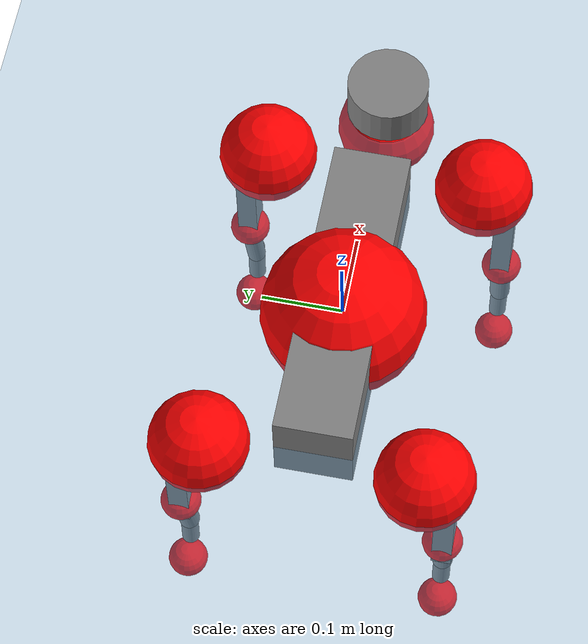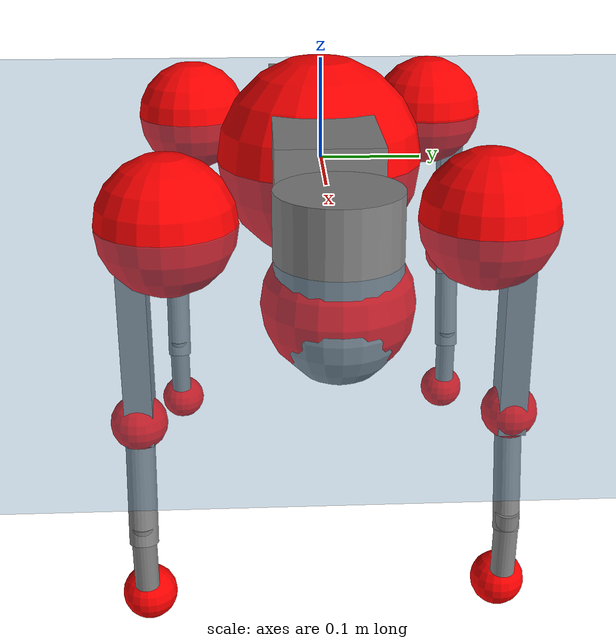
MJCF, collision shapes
<mujoco model="go2">
  <compiler angle="radian" assetdir="assets" balanceinertia="true" inertiafromgeom="false"/>

  <option timestep="0.005" density="1.2" viscosity="2e-05"/>

  <size nkey="1"/>

  <visual>
    <quality shadowsize="8192"/>
    <map shadowclip="0.5"/>
  </visual>

  <default>
    <default class="/">
      <geom contype="0" conaffinity="0" group="1" solref="-1000 -80"/>
      <site size="0.01 0.005 0.005" group="5"/>
      <general forcelimited="true" biastype="affine" gainprm="20" biasprm="0 -20 -0.5"/>
      <default class="go2">
        <joint armature="0.01" damping="0.01" frictionloss="0.2"/>
        <geom condim="1" margin="0.001"/>
        <default class="visual">
          <geom type="mesh" group="2"/>
        </default>
        <default class="collision">
          <geom group="3"/>
          <default class="foot">
            <geom size="0.022 0 0" condim="6" priority="1" friction="0.8 0.02 0.01" solimp="0.015 1 0.022"/>
          </default>
        </default>
        <default class="reward_collision_sphere">
          <geom group="5" rgba="1 0 0 1"/>
        </default>
      </default>
    </default>
  </default>

  <asset>
    <texture type="skybox" colorspace="auto" name="//unnamed_texture_0" builtin="gradient" rgb1="0.95 0.95 0.95" rgb2="0.95 0.95 0.95" width="100" height="600"/>
    <texture type="2d" colorspace="auto" name="texplane" builtin="checker" rgb1="0.345 0.575 0.748" rgb2="0.345 0.575 0.748" markrgb="1 1 1" width="512" height="512"/>
    <material name="MatPlane" class="/" texture="texplane" texuniform="true" texrepeat="2 2" specular="0.9"/>
    <material name="metal" class="/" rgba="0.9 0.95 0.95 1"/>
    <material name="black" class="/" rgba="0 0 0 1"/>
    <material name="white" class="/"/>
    <material name="gray" class="/" rgba="0.671705 0.692426 0.77427 1"/>
    <mesh name="base_0" class="/" file="base_0.obj"/>
    <mesh name="base_1" class="/" file="base_1.obj"/>
    <mesh name="base_2" class="/" file="base_2.obj"/>
    <mesh name="base_3" class="/" file="base_3.obj"/>
    <mesh name="base_4" class="/" file="base_4.obj"/>
    <mesh name="hip_0" class="/" file="hip_0.obj"/>
    <mesh name="hip_1" class="/" file="hip_1.obj"/>
    <mesh name="thigh_0" class="/" file="thigh_0.obj"/>
    <mesh name="thigh_1" class="/" file="thigh_1.obj"/>
    <mesh name="thigh_mirror_0" class="/" file="thigh_mirror_0.obj"/>
    <mesh name="thigh_mirror_1" class="/" file="thigh_mirror_1.obj"/>
    <mesh name="calf_0" class="/" file="calf_0.obj"/>
    <mesh name="calf_1" class="/" file="calf_1.obj"/>
    <mesh name="calf_mirror_0" class="/" file="calf_mirror_0.obj"/>
    <mesh name="calf_mirror_1" class="/" file="calf_mirror_1.obj"/>
    <mesh name="foot" class="/" file="foot.obj"/>
  </asset>

  <worldbody>
    <geom name="floor" class="/" size="100 100 0.125" type="plane" group="0" material="MatPlane"/>
    <light name="toplight_shadow" class="/" pos="0 0 5" dir="0.0990148 0.0990148 -0.990148" type="directional" ambient="0.04 0.04 0.04" diffuse="0.55 0.55 0.55" specular="0.12 0.12 0.12"/>
    <light name="toplight_fill" class="/" pos="0 0 5" dir="0.0990148 0.0990148 -0.990148" type="directional" castshadow="false" ambient="0.04 0.04 0.04" diffuse="0.3 0.3 0.3" specular="0.08 0.08 0.08"/>
    <body name="trunk" childclass="go2" pos="-0.000201874 -0.00142157 -0.000371121" quat="1 7.50875e-05 4.38209e-06 -5.75671e-06">
      <inertial pos="0.02453 -0.00115156 -0.00516611" quat="-0.0083116 0.716948 0.000157097 0.697078" mass="7.63651" diaginertia="0.137327 0.22087 0.0117327"/>
      <joint name="//unnamed_joint_0" type="free" armature="0" damping="0" frictionloss="0"/>
      <geom name="//unnamed_geom_1" class="visual" material="black" mesh="base_0"/>
      <geom name="//unnamed_geom_2" class="visual" material="black" mesh="base_1"/>
      <geom name="//unnamed_geom_3" class="visual" material="black" mesh="base_2"/>
      <geom name="//unnamed_geom_4" class="visual" material="white" mesh="base_3"/>
      <geom name="//unnamed_geom_5" class="visual" material="gray" mesh="base_4"/>
      <geom name="trunk_1" class="collision" size="0.194517 0.0483449 0.0589445" type="box"/>
      <geom name="trunk_2" class="collision" size="0.0517057 0.0465352" pos="0.301272 0 0.0086349" type="cylinder"/>
      <geom name="trunk_3" class="collision" size="0.0486034" pos="0.309729 0 -0.0518094"/>
      <geom name="//unnamed_geom_9" class="reward_collision_sphere" size="0.103411"/>
      <geom name="//unnamed_geom_10" class="reward_collision_sphere" size="0.0620469" pos="0.295987 0 -0.038857"/>
      <site name="imu" pos="-0.0189916 0.0128992 0.0293891" size="0.0103411"/>
      <camera name="track" pos="0 -2.36352 0" quat="0.707107 0.707107 0 0" mode="trackcom"/>
      <camera name="ego_camera" pos="0.329814 0 0.038857" quat="-0.5 -0.5 0.5 0.5"/>
      <body name="FL_hip" pos="0.206303 0.0532772 -0.000340502" quat="1 -0.000197795 7.57732e-05 0.000364271">
        <inertial pos="-0.00628388 0.00272416 0.00229171" quat="0.496898 0.499709 0.505176 0.498177" mass="0.74434" diaginertia="0.00116774 0.00136629 0.000227986"/>
        <joint name="FL_hip_joint" pos="0 0 0" axis="0.999978 0.00431214 -0.00501623" range="-1.0852 1.10229" armature="0.0106905" damping="0.00477744" frictionloss="0.228959"/>
        <geom name="//unnamed_geom_11" class="visual" material="metal" mesh="hip_0"/>
        <geom name="//unnamed_geom_12" class="visual" material="gray" mesh="hip_1"/>
        <geom name="//unnamed_geom_13" class="collision" size="0.0475693 0.0206823" pos="0 0.0945406 0" quat="0.707107 0.707107 0 0" type="cylinder"/>
        <geom name="//unnamed_geom_14" class="reward_collision_sphere" size="0.0620469" pos="0 0.082723 0"/>
        <body name="FL_thigh" pos="-0.00177415 0.111306 -0.000899373" quat="0.999999 -0.000387095 -7.56929e-05 -0.00101859">
          <inertial pos="-0.00200657 -0.023863 -0.0272771" quat="0.830133 0.0839583 -0.0176405 0.550926" mass="1.27438" diaginertia="0.007741 0.0133526 0.00040484"/>
          <joint name="FL_thigh_joint" pos="0 0 0" axis="0.000873273 0.999961 -0.00881966" stiffness="0.00314485" range="-1.51449 3.48312" armature="0.0108919" damping="0.0121061" frictionloss="0.234228"/>
          <geom name="//unnamed_geom_15" class="visual" material="metal" mesh="thigh_0"/>
          <geom name="//unnamed_geom_16" class="visual" material="gray" mesh="thigh_1"/>
          <geom name="//unnamed_geom_17" class="collision" size="0.110133 0.0126679 0.0175799" pos="0 0 -0.0919616" quat="0.707107 0 0.707107 0" type="box"/>
          <body name="FL_calf" pos="-0.00319272 0.000250744 -0.186489" quat="0.999999 -0.00134404 -0.000282057 -0.000109138">
            <inertial pos="0.00887474 -0.000505702 -0.12059" quat="0.710092 0.000645651 -0.00488957 0.704092" mass="0.266541" diaginertia="0.00193153 0.00335256 2.58106e-05"/>
            <joint name="FL_calf_joint" pos="0 0 0" axis="0.000687406 0.999999 0.000778947" stiffness="0.00160515" range="-2.70117 -0.844507" armature="0.0091493" damping="0.00820558" frictionloss="0.20311"/>
            <geom name="//unnamed_geom_18" class="visual" material="gray" mesh="calf_0"/>
            <geom name="//unnamed_geom_19" class="visual" material="black" mesh="calf_1"/>
            <geom name="FL_calf0" class="collision" size="0.0124094 0.0620469" pos="0.00845677 0 -0.0518094" quat="0.994493 0 -0.104807 0" type="cylinder"/>
            <geom name="//unnamed_geom_21" class="collision" size="0.0113753 0.0336087" pos="0.0211419 0 -0.127796" quat="0.999688 0 0.0249974 0" type="cylinder"/>
            <geom name="//unnamed_geom_22" class="visual" pos="0 0 -0.183923" quat="1 0 0 0" material="black" mesh="foot"/>
            <geom name="FL_foot" class="foot" size="0.0170808" pos="-0.00211419 0 -0.183923"/>
            <geom name="//unnamed_geom_24" class="reward_collision_sphere" size="0.0258529"/>
            <geom name="//unnamed_geom_25" class="reward_collision_sphere" size="0.0258529" pos="-0.00211419 0 -0.183923"/>
            <site name="FL_foot" class="foot" pos="-0.00211419 0 -0.183923" size="0.0103411"/>
          </body>
        </body>
      </body>
      <body name="FR_hip" pos="0.206552 -0.057662 -0.00188933" quat="1 -0.000384437 -0.000264099 -0.00065063">
        <inertial pos="-0.00787323 -0.00123801 0.0018073" quat="0.496956 0.508544 0.496955 0.497447" mass="0.741208" diaginertia="0.00112585 0.00139745 0.000232557"/>
        <joint name="FR_hip_joint" pos="0 0 0" axis="0.999938 -0.00759039 0.00814104" range="-1.04771 1.06803" armature="0.0114846" damping="0.0149375" frictionloss="0.233776"/>
        <geom name="//unnamed_geom_26" class="visual" pos="0 2.77262e-09 1.18923e-07" quat="4.63268e-05 1 0 0" material="metal" mesh="hip_0"/>
        <geom name="//unnamed_geom_27" class="visual" pos="0 4.49475e-09 -2.94143e-07" quat="4.63268e-05 1 0 0" material="gray" mesh="hip_1"/>
        <geom name="//unnamed_geom_28" class="collision" size="0.0475693 0.0206823" pos="0 -0.0945406 0" quat="0.707107 0.707107 0 0" type="cylinder"/>
        <geom name="//unnamed_geom_29" class="reward_collision_sphere" size="0.0620469" pos="0 -0.082723 0"/>
        <body name="FR_thigh" pos="-0.000597694 -0.114527 -0.00135599" quat="0.999999 0.000815833 0.00117576 -0.000171806">
          <inertial pos="-0.00636482 0.0277025 -0.0274502" quat="0.554168 -0.00872165 0.0809365 0.828415" mass="1.31929" diaginertia="0.00789158 0.013574 0.000412376"/>
          <joint name="FR_thigh_joint" pos="0 0 0" axis="0.000242171 -1 0.000185984" range="-3.47859 1.57212" armature="0.0102794" damping="0.0235052" frictionloss="0.208911"/>
          <geom name="//unnamed_geom_30" class="visual" material="metal" mesh="thigh_mirror_0"/>
          <geom name="//unnamed_geom_31" class="visual" material="gray" mesh="thigh_mirror_1"/>
          <geom name="//unnamed_geom_32" class="collision" size="0.110133 0.0126679 0.0175799" pos="0 0 -0.0919616" quat="0.707107 0 0.707107 0" type="box"/>
          <body name="FR_calf" pos="6.39138e-05 -0.00121597 -0.185629" quat="1 -0.000103203 -0.000246316 5.17989e-05">
            <inertial pos="0.00947399 0.000668365 -0.120256" quat="0.710459 0.0023198 0.000237618 0.703735" mass="0.26524" diaginertia="0.00200533 0.00338996 2.62564e-05"/>
            <joint name="FR_calf_joint" pos="0 0 0" axis="-0.00108671 -0.999984 0.00547577" range="0.852176 2.69899" armature="0.0101675" damping="0.00644365" frictionloss="0.199872"/>
            <geom name="//unnamed_geom_33" class="visual" material="gray" mesh="calf_mirror_0"/>
            <geom name="//unnamed_geom_34" class="visual" material="black" mesh="calf_mirror_1"/>
            <geom name="FR_calf0" class="collision" size="0.0134435 0.0620469" pos="0.010571 0 -0.0518094" quat="0.995004 0 -0.0998334 0" type="cylinder"/>
            <geom name="//unnamed_geom_36" class="collision" size="0.0113753 0.0336087" pos="0.0211419 0 -0.127796" quat="0.999688 0 0.0249974 0" type="cylinder"/>
            <geom name="//unnamed_geom_37" class="visual" pos="0 0 -0.183923" quat="1 0 0 0" material="black" mesh="foot"/>
            <geom name="FR_foot" class="foot" size="0.0202449" pos="-0.00211419 0 -0.183923"/>
            <geom name="//unnamed_geom_39" class="reward_collision_sphere" size="0.0258529"/>
            <geom name="//unnamed_geom_40" class="reward_collision_sphere" size="0.0258529" pos="-0.00211419 0 -0.183923"/>
            <site name="FR_foot" class="foot" pos="-0.00211419 0 -0.183923" size="0.0103411"/>
          </body>
        </body>
      </body>
      <body name="RL_hip" pos="-0.204657 0.0543739 0.00182736" quat="0.999999 0.000709256 -0.000288211 0.000904803">
        <inertial pos="0.00614441 0.00137769 0.00247482" quat="0.507648 0.501563 0.501107 0.48951" mass="0.797643" diaginertia="0.00121412 0.00142054 0.000238425"/>
        <joint name="RL_hip_joint" pos="0 0 0" axis="-0.999708 -0.0239712 0.00315293" range="-1.01341 0.989317" armature="0.0106808" damping="0.00549119" frictionloss="0.22042"/>
        <geom name="//unnamed_geom_41" class="visual" pos="-1.68662e-09 0 -3.30616e-07" quat="4.63268e-05 0 1 0" material="metal" mesh="hip_0"/>
        <geom name="//unnamed_geom_42" class="visual" pos="-2.73421e-09 0 -2.93209e-07" quat="4.63268e-05 0 1 0" material="gray" mesh="hip_1"/>
        <geom name="//unnamed_geom_43" class="collision" size="0.0475693 0.0206823" pos="0 0.0945406 0" quat="0.707107 0.707107 0 0" type="cylinder"/>
        <geom name="//unnamed_geom_44" class="reward_collision_sphere" size="0.0620469" pos="0 0.082723 0"/>
        <body name="RL_thigh" pos="-0.00196529 0.112311 0.00103967" quat="1 0.000328345 0.00010415 -0.000692228">
          <inertial pos="-0.00321678 -0.0258127 -0.0278326" quat="0.828417 0.0738401 -0.0256561 0.55463" mass="1.28859" diaginertia="0.00790723 0.0143887 0.000437823"/>
          <joint name="RL_thigh_joint" pos="0 0 0" axis="-0.0132126 0.999872 0.00897042" stiffness="0.0014636" range="-0.552364 4.58682" armature="0.00908104" damping="0.00182434" frictionloss="0.210559"/>
          <geom name="//unnamed_geom_45" class="visual" material="metal" mesh="thigh_0"/>
          <geom name="//unnamed_geom_46" class="visual" material="gray" mesh="thigh_1"/>
          <geom name="//unnamed_geom_47" class="collision" size="0.110133 0.0126679 0.0175799" pos="0 0 -0.0919616" quat="0.707107 0 0.707107 0" type="box"/>
          <body name="RL_calf" pos="-0.00109578 0.00137244 -0.182464" quat="1 4.9193e-05 -0.000734666 0.000323696">
            <inertial pos="0.00701556 -0.00063997 -0.122499" quat="0.713276 0.00124811 -0.00681826 0.700849" mass="0.283404" diaginertia="0.00203982 0.00351443 2.64032e-05"/>
            <joint name="RL_calf_joint" pos="0 0 0" axis="-0.00781486 0.999965 0.0029185" stiffness="0.000645692" range="-2.74658 -0.867657" armature="0.009783" damping="0" frictionloss="0.21379"/>
            <geom name="//unnamed_geom_48" class="visual" material="gray" mesh="calf_0"/>
            <geom name="//unnamed_geom_49" class="visual" material="black" mesh="calf_1"/>
            <geom name="RL_calf0" class="collision" size="0.0134435 0.0620469" pos="0.010571 0 -0.0518094" quat="0.995004 0 -0.0998334 0" type="cylinder"/>
            <geom name="//unnamed_geom_51" class="collision" size="0.0113753 0.0336087" pos="0.0211419 0 -0.127796" quat="0.999688 0 0.0249974 0" type="cylinder"/>
            <geom name="//unnamed_geom_52" class="visual" pos="0 0 -0.183923" quat="1 0 0 0" material="black" mesh="foot"/>
            <geom name="RL_foot" class="foot" size="0.0226167" pos="-0.00211419 0 -0.183923"/>
            <geom name="//unnamed_geom_54" class="reward_collision_sphere" size="0.0258529"/>
            <geom name="//unnamed_geom_55" class="reward_collision_sphere" size="0.0258529" pos="-0.00211419 0 -0.183923"/>
            <site name="RL_foot" class="foot" pos="-0.00211419 0 -0.183923" size="0.0103411"/>
          </body>
        </body>
      </body>
      <body name="RR_hip" pos="-0.203082 -0.0545205 -0.00149176" quat="1 -0.000116837 0.000133647 0.000168208">
        <inertial pos="0.00740683 -0.00144106 -0.00247393" quat="0.497555 0.497395 0.49229 0.512532" mass="0.764656" diaginertia="0.00122813 0.00146485 0.000237151"/>
        <joint name="RR_hip_joint" pos="0 0 0" axis="-0.999999 -0.00110085 -0.000520052" stiffness="0.0126708" range="-1.05045 1.04917" armature="0.0105311" damping="0.00474331" frictionloss="0.205555"/>
        <geom name="//unnamed_geom_56" class="visual" pos="1.69093e-09 2.77262e-09 -4.4954e-07" quat="2.14617e-09 4.63268e-05 4.63268e-05 -1" material="metal" mesh="hip_0"/>
        <geom name="//unnamed_geom_57" class="visual" pos="2.72354e-09 4.49475e-09 9.33658e-10" quat="2.14617e-09 4.63268e-05 4.63268e-05 -1" material="gray" mesh="hip_1"/>
        <geom name="//unnamed_geom_58" class="collision" size="0.0475693 0.0206823" pos="0 -0.0945406 0" quat="0.707107 0.707107 0 0" type="cylinder"/>
        <geom name="//unnamed_geom_59" class="reward_collision_sphere" size="0.0620469" pos="0 -0.082723 0"/>
        <body name="RR_thigh" pos="-0.000256225 -0.111301 0.00113954" quat="1 0.000146044 0.000223113 8.99965e-05">
          <inertial pos="-0.00404777 0.026368 -0.0258637" quat="0.54813 -0.0210583 0.0915897 0.831097" mass="1.22029" diaginertia="0.00756781 0.0128891 0.000409005"/>
          <joint name="RR_thigh_joint" pos="0 0 0" axis="-0.00183386 -0.999959 -0.00888344" range="-4.5244 0.577032" armature="0.010817" damping="0.00672934" frictionloss="0.217976"/>
          <geom name="//unnamed_geom_60" class="visual" material="metal" mesh="thigh_mirror_0"/>
          <geom name="//unnamed_geom_61" class="visual" material="gray" mesh="thigh_mirror_1"/>
          <geom name="//unnamed_geom_62" class="collision" size="0.110133 0.0126679 0.0175799" pos="0 0 -0.0919616" quat="0.707107 0 0.707107 0" type="box"/>
          <body name="RR_calf" pos="0.00278045 0.00171674 -0.181919" quat="0.999999 0.000209598 0.000447437 0.0012312">
            <inertial pos="0.00462066 0.000727024 -0.124144" quat="0.698203 -0.0134048 -0.00531391 0.715755" mass="0.267518" diaginertia="0.00195137 0.00325399 2.57756e-05"/>
            <joint name="RR_calf_joint" pos="0 0 0" axis="0.00192495 -0.999967 -0.00794199" range="0.814467 2.71857" armature="0.0103162" damping="0.00988855" frictionloss="0.202898"/>
            <geom name="//unnamed_geom_63" class="visual" material="gray" mesh="calf_mirror_0"/>
            <geom name="//unnamed_geom_64" class="visual" material="black" mesh="calf_mirror_1"/>
            <geom name="RR_calf0" class="collision" size="0.0134435 0.0620469" pos="0.010571 0 -0.0518094" quat="0.995004 0 -0.0998334 0" type="cylinder"/>
            <geom name="//unnamed_geom_66" class="collision" size="0.0113753 0.0336087" pos="0.0211419 0 -0.127796" quat="0.999688 0 0.0249974 0" type="cylinder"/>
            <geom name="//unnamed_geom_67" class="visual" pos="0 0 -0.183923" quat="1 0 0 0" material="black" mesh="foot"/>
            <geom name="RR_foot" class="foot" size="0.0209635" pos="-0.00211419 0 -0.183923"/>
            <geom name="//unnamed_geom_69" class="reward_collision_sphere" size="0.0258529"/>
            <geom name="//unnamed_geom_70" class="reward_collision_sphere" size="0.0258529" pos="-0.00211419 0 -0.183923"/>
            <site name="RR_foot" class="foot" pos="-0.00211419 0 -0.183923" size="0.0103411"/>
          </body>
        </body>
      </body>
    </body>
  </worldbody>

  <contact>
    <pair class="/" geom1="floor" geom2="FL_foot" name="//unnamed_contact_0"/>
    <pair class="/" geom1="floor" geom2="FR_foot" name="//unnamed_contact_1"/>
    <pair class="/" geom1="floor" geom2="RL_foot" name="//unnamed_contact_2"/>
    <pair class="/" geom1="floor" geom2="RR_foot" name="//unnamed_contact_3"/>
  </contact>

  <actuator>
    <general name="FL_hip" class="/" joint="FL_hip_joint" forcerange="-22.969 22.969" gainprm="20.5216" biasprm="0 -20.5216 -0.551979"/>
    <general name="FL_thigh" class="/" joint="FL_thigh_joint" forcerange="-22.4891 22.4891" gainprm="20.5216" biasprm="0 -20.5216 -0.551979"/>
    <general name="FL_calf" class="/" joint="FL_calf_joint" forcerange="-42.6796 42.6796" gainprm="20.5216" biasprm="0 -20.5216 -0.551979"/>
    <general name="FR_hip" class="/" joint="FR_hip_joint" forcerange="-24.0775 24.0775" gainprm="20.5216" biasprm="0 -20.5216 -0.551979"/>
    <general name="FR_thigh" class="/" joint="FR_thigh_joint" forcerange="-24.0468 24.0468" gainprm="20.5216" biasprm="0 -20.5216 -0.551979"/>
    <general name="FR_calf" class="/" joint="FR_calf_joint" forcerange="-50.3889 50.3889" gainprm="20.5216" biasprm="0 -20.5216 -0.551979"/>
    <general name="RL_hip" class="/" joint="RL_hip_joint" forcerange="-22.8488 22.8488" gainprm="20.5216" biasprm="0 -20.5216 -0.551979"/>
    <general name="RL_thigh" class="/" joint="RL_thigh_joint" forcerange="-25.0655 25.0655" gainprm="20.5216" biasprm="0 -20.5216 -0.551979"/>
    <general name="RL_calf" class="/" joint="RL_calf_joint" forcerange="-42.3759 42.3759" gainprm="20.5216" biasprm="0 -20.5216 -0.551979"/>
    <general name="RR_hip" class="/" joint="RR_hip_joint" forcerange="-25.4823 25.4823" gainprm="20.5216" biasprm="0 -20.5216 -0.551979"/>
    <general name="RR_thigh" class="/" joint="RR_thigh_joint" forcerange="-24.1815 24.1815" gainprm="20.5216" biasprm="0 -20.5216 -0.551979"/>
    <general name="RR_calf" class="/" joint="RR_calf_joint" forcerange="-47.3601 47.3601" gainprm="20.5216" biasprm="0 -20.5216 -0.551979"/>
  </actuator>

  <sensor>
    <gyro site="imu" name="imu_angular_velocity"/>
    <velocimeter site="imu" name="imu_linear_velocity"/>
    <framelinvel objtype="site" objname="FL_foot" name="FL_foot_global_linear_velocity"/>
    <framelinvel objtype="site" objname="FR_foot" name="FR_foot_global_linear_velocity"/>
    <framelinvel objtype="site" objname="RL_foot" name="RL_foot_global_linear_velocity"/>
    <framelinvel objtype="site" objname="RR_foot" name="RR_foot_global_linear_velocity"/>
  </sensor>

  <keyframe>
    <key name="home" qpos="0 0 0.325 1 0 0 0 0.1 0.8 -1.5 -0.1 -0.8 1.5 -0.1 0.8 -1.5 0.1 -0.8 1.5"/>
  </keyframe>
</mujoco>
